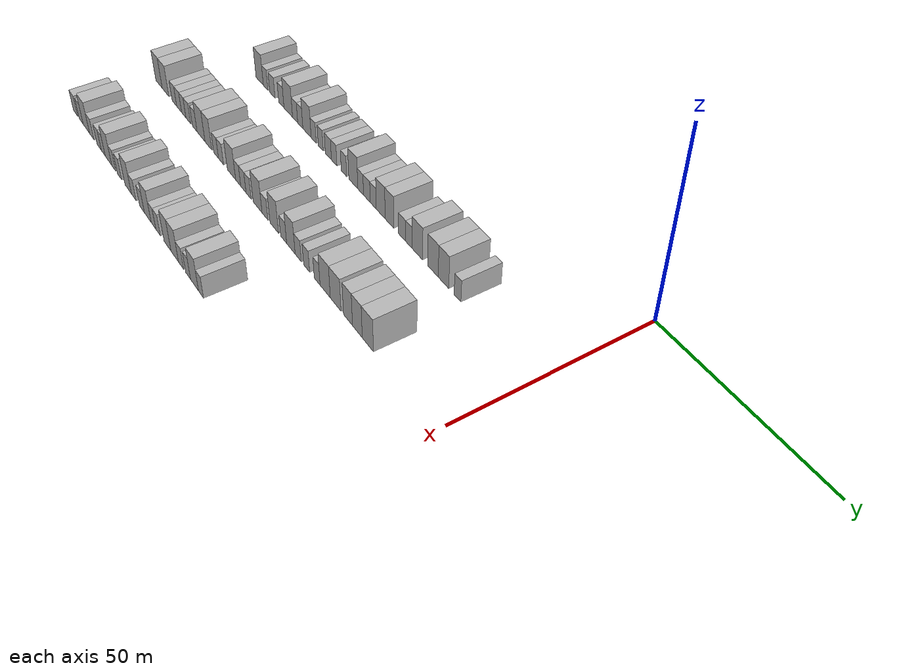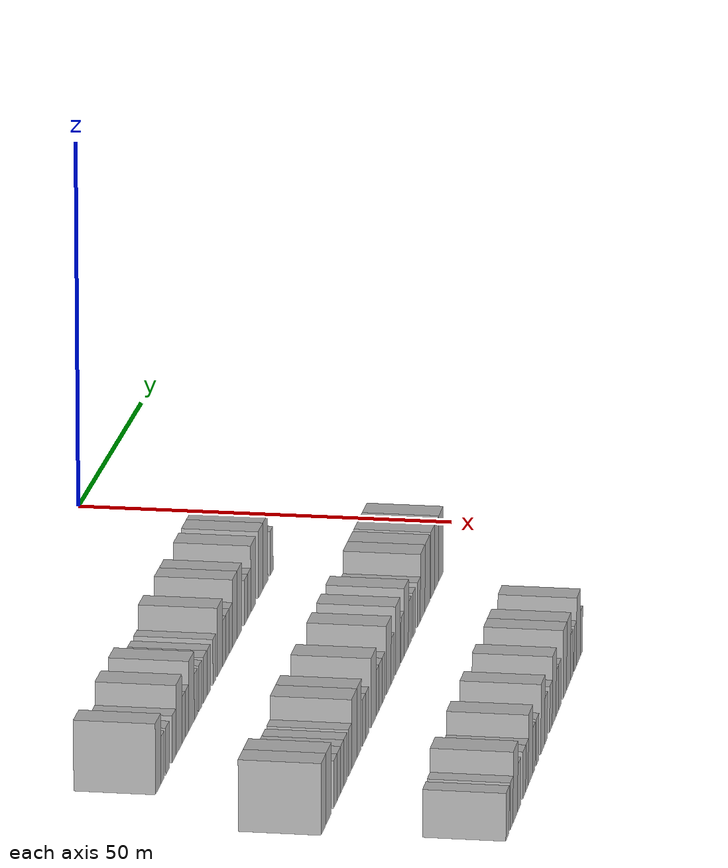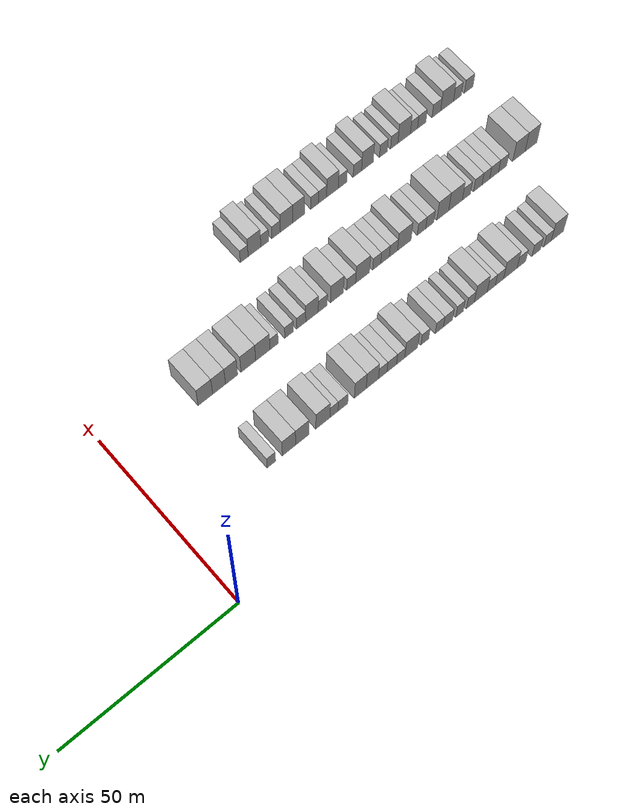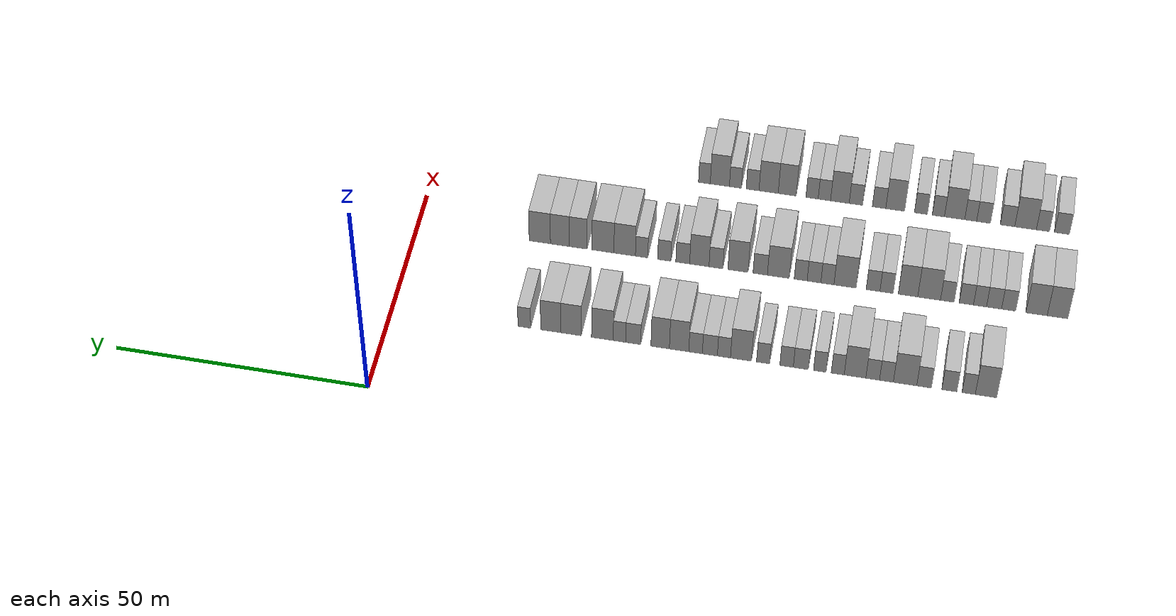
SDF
<sdf version="1.6">
 <world name="default">
  <model name="building_65">
   <static>1</static>
   <pose>25.0000 -115.8968 0 0.000000 0.000000 0.000000</pose>
   <link name="link">
    <pose>0 0 4.50 0 0 0</pose>
    <collision name="collision"><geometry><box><size>10.0000 4.0615 9.0000</size></box></geometry></collision>
    <visual name="visual">
     <cast_shadows>0</cast_shadows>
     <geometry><box><size>10.0000 4.0615 9.0000</size></box></geometry>
     <material>
      <script>
       <uri>model://HANNAS_wall/materials/scripts</uri>
       <uri>model://HANNAS_wall/materials/textures</uri>
       <name>vrc/HANNAS_wall</name>
      </script>
     </material>
    </visual>
   </link>
  </model>
  <model name="building_66">
   <static>1</static>
   <pose>25.0000 -112.6174 0 0.000000 0.000000 0.000000</pose>
   <link name="link">
    <pose>0 0 3.00 0 0 0</pose>
    <collision name="collision"><geometry><box><size>10.0000 2.4972 6.0000</size></box></geometry></collision>
    <visual name="visual">
     <cast_shadows>0</cast_shadows>
     <geometry><box><size>10.0000 2.4972 6.0000</size></box></geometry>
     <material>
      <script>
       <uri>model://HANNAS_wall/materials/scripts</uri>
       <uri>model://HANNAS_wall/materials/textures</uri>
       <name>vrc/HANNAS_wall</name>
      </script>
     </material>
    </visual>
   </link>
  </model>
  <model name="building_67">
   <static>1</static>
   <pose>25.0000 -108.9361 0 0.000000 0.000000 0.000000</pose>
   <link name="link">
    <pose>0 0 3.00 0 0 0</pose>
    <collision name="collision"><geometry><box><size>10.0000 2.8655 6.0000</size></box></geometry></collision>
    <visual name="visual">
     <cast_shadows>0</cast_shadows>
     <geometry><box><size>10.0000 2.8655 6.0000</size></box></geometry>
     <material>
      <script>
       <uri>model://HANNAS_wall/materials/scripts</uri>
       <uri>model://HANNAS_wall/materials/textures</uri>
       <name>vrc/HANNAS_wall</name>
      </script>
     </material>
    </visual>
   </link>
  </model>
  <model name="building_68">
   <static>1</static>
   <pose>25.0000 -104.1059 0 0.000000 0.000000 0.000000</pose>
   <link name="link">
    <pose>0 0 3.00 0 0 0</pose>
    <collision name="collision"><geometry><box><size>10.0000 2.7950 6.0000</size></box></geometry></collision>
    <visual name="visual">
     <cast_shadows>0</cast_shadows>
     <geometry><box><size>10.0000 2.7950 6.0000</size></box></geometry>
     <material>
      <script>
       <uri>model://HANNAS_wall/materials/scripts</uri>
       <uri>model://HANNAS_wall/materials/textures</uri>
       <name>vrc/HANNAS_wall</name>
      </script>
     </material>
    </visual>
   </link>
  </model>
  <model name="building_69">
   <static>1</static>
   <pose>25.0000 -100.4717 0 0.000000 0.000000 0.000000</pose>
   <link name="link">
    <pose>0 0 4.50 0 0 0</pose>
    <collision name="collision"><geometry><box><size>10.0000 4.4734 9.0000</size></box></geometry></collision>
    <visual name="visual">
     <cast_shadows>0</cast_shadows>
     <geometry><box><size>10.0000 4.4734 9.0000</size></box></geometry>
     <material>
      <script>
       <uri>model://HANNAS_wall/materials/scripts</uri>
       <uri>model://HANNAS_wall/materials/textures</uri>
       <name>vrc/HANNAS_wall</name>
      </script>
     </material>
    </visual>
   </link>
  </model>
  <model name="building_70">
   <static>1</static>
   <pose>25.0000 -96.9081 0 0.000000 0.000000 0.000000</pose>
   <link name="link">
    <pose>0 0 3.00 0 0 0</pose>
    <collision name="collision"><geometry><box><size>10.0000 2.6538 6.0000</size></box></geometry></collision>
    <visual name="visual">
     <cast_shadows>0</cast_shadows>
     <geometry><box><size>10.0000 2.6538 6.0000</size></box></geometry>
     <material>
      <script>
       <uri>model://HANNAS_wall/materials/scripts</uri>
       <uri>model://HANNAS_wall/materials/textures</uri>
       <name>vrc/HANNAS_wall</name>
      </script>
     </material>
    </visual>
   </link>
  </model>
  <model name="building_71">
   <static>1</static>
   <pose>25.0000 -94.2689 0 0.000000 0.000000 0.000000</pose>
   <link name="link">
    <pose>0 0 3.00 0 0 0</pose>
    <collision name="collision"><geometry><box><size>10.0000 2.6245 6.0000</size></box></geometry></collision>
    <visual name="visual">
     <cast_shadows>0</cast_shadows>
     <geometry><box><size>10.0000 2.6245 6.0000</size></box></geometry>
     <material>
      <script>
       <uri>model://HANNAS_wall/materials/scripts</uri>
       <uri>model://HANNAS_wall/materials/textures</uri>
       <name>vrc/HANNAS_wall</name>
      </script>
     </material>
    </visual>
   </link>
  </model>
  <model name="building_72">
   <static>1</static>
   <pose>25.0000 -90.8781 0 0.000000 0.000000 0.000000</pose>
   <link name="link">
    <pose>0 0 4.50 0 0 0</pose>
    <collision name="collision"><geometry><box><size>10.0000 4.1571 9.0000</size></box></geometry></collision>
    <visual name="visual">
     <cast_shadows>0</cast_shadows>
     <geometry><box><size>10.0000 4.1571 9.0000</size></box></geometry>
     <material>
      <script>
       <uri>model://HANNAS_wall/materials/scripts</uri>
       <uri>model://HANNAS_wall/materials/textures</uri>
       <name>vrc/HANNAS_wall</name>
      </script>
     </material>
    </visual>
   </link>
  </model>
  <model name="building_73">
   <static>1</static>
   <pose>25.0000 -87.5514 0 0.000000 0.000000 0.000000</pose>
   <link name="link">
    <pose>0 0 3.00 0 0 0</pose>
    <collision name="collision"><geometry><box><size>10.0000 2.4963 6.0000</size></box></geometry></collision>
    <visual name="visual">
     <cast_shadows>0</cast_shadows>
     <geometry><box><size>10.0000 2.4963 6.0000</size></box></geometry>
     <material>
      <script>
       <uri>model://HANNAS_wall/materials/scripts</uri>
       <uri>model://HANNAS_wall/materials/textures</uri>
       <name>vrc/HANNAS_wall</name>
      </script>
     </material>
    </visual>
   </link>
  </model>
  <model name="building_74">
   <static>1</static>
   <pose>25.0000 -84.0930 0 0.000000 0.000000 0.000000</pose>
   <link name="link">
    <pose>0 0 3.00 0 0 0</pose>
    <collision name="collision"><geometry><box><size>10.0000 2.4206 6.0000</size></box></geometry></collision>
    <visual name="visual">
     <cast_shadows>0</cast_shadows>
     <geometry><box><size>10.0000 2.4206 6.0000</size></box></geometry>
     <material>
      <script>
       <uri>model://HANNAS_wall/materials/scripts</uri>
       <uri>model://HANNAS_wall/materials/textures</uri>
       <name>vrc/HANNAS_wall</name>
      </script>
     </material>
    </visual>
   </link>
  </model>
  <model name="building_75">
   <static>1</static>
   <pose>25.0000 -80.4297 0 0.000000 0.000000 0.000000</pose>
   <link name="link">
    <pose>0 0 3.00 0 0 0</pose>
    <collision name="collision"><geometry><box><size>10.0000 2.9061 6.0000</size></box></geometry></collision>
    <visual name="visual">
     <cast_shadows>0</cast_shadows>
     <geometry><box><size>10.0000 2.9061 6.0000</size></box></geometry>
     <material>
      <script>
       <uri>model://HANNAS_wall/materials/scripts</uri>
       <uri>model://HANNAS_wall/materials/textures</uri>
       <name>vrc/HANNAS_wall</name>
      </script>
     </material>
    </visual>
   </link>
  </model>
  <model name="building_76">
   <static>1</static>
   <pose>25.0000 -77.6740 0 0.000000 0.000000 0.000000</pose>
   <link name="link">
    <pose>0 0 3.00 0 0 0</pose>
    <collision name="collision"><geometry><box><size>10.0000 2.6052 6.0000</size></box></geometry></collision>
    <visual name="visual">
     <cast_shadows>0</cast_shadows>
     <geometry><box><size>10.0000 2.6052 6.0000</size></box></geometry>
     <material>
      <script>
       <uri>model://HANNAS_wall/materials/scripts</uri>
       <uri>model://HANNAS_wall/materials/textures</uri>
       <name>vrc/HANNAS_wall</name>
      </script>
     </material>
    </visual>
   </link>
  </model>
  <model name="building_77">
   <static>1</static>
   <pose>25.0000 -73.1092 0 0.000000 0.000000 0.000000</pose>
   <link name="link">
    <pose>0 0 3.00 0 0 0</pose>
    <collision name="collision"><geometry><box><size>10.0000 2.5244 6.0000</size></box></geometry></collision>
    <visual name="visual">
     <cast_shadows>0</cast_shadows>
     <geometry><box><size>10.0000 2.5244 6.0000</size></box></geometry>
     <material>
      <script>
       <uri>model://HANNAS_wall/materials/scripts</uri>
       <uri>model://HANNAS_wall/materials/textures</uri>
       <name>vrc/HANNAS_wall</name>
      </script>
     </material>
    </visual>
   </link>
  </model>
  <model name="building_78">
   <static>1</static>
   <pose>25.0000 -68.8132 0 0.000000 0.000000 0.000000</pose>
   <link name="link">
    <pose>0 0 4.50 0 0 0</pose>
    <collision name="collision"><geometry><box><size>10.0000 4.0676 9.0000</size></box></geometry></collision>
    <visual name="visual">
     <cast_shadows>0</cast_shadows>
     <geometry><box><size>10.0000 4.0676 9.0000</size></box></geometry>
     <material>
      <script>
       <uri>model://HANNAS_wall/materials/scripts</uri>
       <uri>model://HANNAS_wall/materials/textures</uri>
       <name>vrc/HANNAS_wall</name>
      </script>
     </material>
    </visual>
   </link>
  </model>
  <model name="building_79">
   <static>1</static>
   <pose>25.0000 -65.5069 0 0.000000 0.000000 0.000000</pose>
   <link name="link">
    <pose>0 0 3.00 0 0 0</pose>
    <collision name="collision"><geometry><box><size>10.0000 2.5451 6.0000</size></box></geometry></collision>
    <visual name="visual">
     <cast_shadows>0</cast_shadows>
     <geometry><box><size>10.0000 2.5451 6.0000</size></box></geometry>
     <material>
      <script>
       <uri>model://HANNAS_wall/materials/scripts</uri>
       <uri>model://HANNAS_wall/materials/textures</uri>
       <name>vrc/HANNAS_wall</name>
      </script>
     </material>
    </visual>
   </link>
  </model>
  <model name="building_80">
   <static>1</static>
   <pose>25.0000 -62.7649 0 0.000000 0.000000 0.000000</pose>
   <link name="link">
    <pose>0 0 3.00 0 0 0</pose>
    <collision name="collision"><geometry><box><size>10.0000 2.9388 6.0000</size></box></geometry></collision>
    <visual name="visual">
     <cast_shadows>0</cast_shadows>
     <geometry><box><size>10.0000 2.9388 6.0000</size></box></geometry>
     <material>
      <script>
       <uri>model://HANNAS_wall/materials/scripts</uri>
       <uri>model://HANNAS_wall/materials/textures</uri>
       <name>vrc/HANNAS_wall</name>
      </script>
     </material>
    </visual>
   </link>
  </model>
  <model name="building_81">
   <static>1</static>
   <pose>25.0000 -59.9707 0 0.000000 0.000000 0.000000</pose>
   <link name="link">
    <pose>0 0 3.00 0 0 0</pose>
    <collision name="collision"><geometry><box><size>10.0000 2.6497 6.0000</size></box></geometry></collision>
    <visual name="visual">
     <cast_shadows>0</cast_shadows>
     <geometry><box><size>10.0000 2.6497 6.0000</size></box></geometry>
     <material>
      <script>
       <uri>model://HANNAS_wall/materials/scripts</uri>
       <uri>model://HANNAS_wall/materials/textures</uri>
       <name>vrc/HANNAS_wall</name>
      </script>
     </material>
    </visual>
   </link>
  </model>
  <model name="building_82">
   <static>1</static>
   <pose>25.0000 -56.7510 0 0.000000 0.000000 0.000000</pose>
   <link name="link">
    <pose>0 0 4.50 0 0 0</pose>
    <collision name="collision"><geometry><box><size>10.0000 3.7896 9.0000</size></box></geometry></collision>
    <visual name="visual">
     <cast_shadows>0</cast_shadows>
     <geometry><box><size>10.0000 3.7896 9.0000</size></box></geometry>
     <material>
      <script>
       <uri>model://HANNAS_wall/materials/scripts</uri>
       <uri>model://HANNAS_wall/materials/textures</uri>
       <name>vrc/HANNAS_wall</name>
      </script>
     </material>
    </visual>
   </link>
  </model>
  <model name="building_83">
   <static>1</static>
   <pose>25.0000 -53.0483 0 0.000000 0.000000 0.000000</pose>
   <link name="link">
    <pose>0 0 4.50 0 0 0</pose>
    <collision name="collision"><geometry><box><size>10.0000 3.6158 9.0000</size></box></geometry></collision>
    <visual name="visual">
     <cast_shadows>0</cast_shadows>
     <geometry><box><size>10.0000 3.6158 9.0000</size></box></geometry>
     <material>
      <script>
       <uri>model://HANNAS_wall/materials/scripts</uri>
       <uri>model://HANNAS_wall/materials/textures</uri>
       <name>vrc/HANNAS_wall</name>
      </script>
     </material>
    </visual>
   </link>
  </model>
  <model name="building_84">
   <static>1</static>
   <pose>25.0000 -47.7635 0 0.000000 0.000000 0.000000</pose>
   <link name="link">
    <pose>0 0 3.00 0 0 0</pose>
    <collision name="collision"><geometry><box><size>10.0000 2.9539 6.0000</size></box></geometry></collision>
    <visual name="visual">
     <cast_shadows>0</cast_shadows>
     <geometry><box><size>10.0000 2.9539 6.0000</size></box></geometry>
     <material>
      <script>
       <uri>model://HANNAS_wall/materials/scripts</uri>
       <uri>model://HANNAS_wall/materials/textures</uri>
       <name>vrc/HANNAS_wall</name>
      </script>
     </material>
    </visual>
   </link>
  </model>
  <model name="building_85">
   <static>1</static>
   <pose>25.0000 -45.0613 0 0.000000 0.000000 0.000000</pose>
   <link name="link">
    <pose>0 0 3.00 0 0 0</pose>
    <collision name="collision"><geometry><box><size>10.0000 2.4507 6.0000</size></box></geometry></collision>
    <visual name="visual">
     <cast_shadows>0</cast_shadows>
     <geometry><box><size>10.0000 2.4507 6.0000</size></box></geometry>
     <material>
      <script>
       <uri>model://HANNAS_wall/materials/scripts</uri>
       <uri>model://HANNAS_wall/materials/textures</uri>
       <name>vrc/HANNAS_wall</name>
      </script>
     </material>
    </visual>
   </link>
  </model>
  <model name="building_86">
   <static>1</static>
   <pose>25.0000 -41.6921 0 0.000000 0.000000 0.000000</pose>
   <link name="link">
    <pose>0 0 4.50 0 0 0</pose>
    <collision name="collision"><geometry><box><size>10.0000 4.2877 9.0000</size></box></geometry></collision>
    <visual name="visual">
     <cast_shadows>0</cast_shadows>
     <geometry><box><size>10.0000 4.2877 9.0000</size></box></geometry>
     <material>
      <script>
       <uri>model://HANNAS_wall/materials/scripts</uri>
       <uri>model://HANNAS_wall/materials/textures</uri>
       <name>vrc/HANNAS_wall</name>
      </script>
     </material>
    </visual>
   </link>
  </model>
  <model name="building_87">
   <static>1</static>
   <pose>25.0000 -35.5112 0 0.000000 0.000000 0.000000</pose>
   <link name="link">
    <pose>0 0 4.50 0 0 0</pose>
    <collision name="collision"><geometry><box><size>10.0000 4.0740 9.0000</size></box></geometry></collision>
    <visual name="visual">
     <cast_shadows>0</cast_shadows>
     <geometry><box><size>10.0000 4.0740 9.0000</size></box></geometry>
     <material>
      <script>
       <uri>model://HANNAS_wall/materials/scripts</uri>
       <uri>model://HANNAS_wall/materials/textures</uri>
       <name>vrc/HANNAS_wall</name>
      </script>
     </material>
    </visual>
   </link>
  </model>
  <model name="building_88">
   <static>1</static>
   <pose>25.0000 -31.4903 0 0.000000 0.000000 0.000000</pose>
   <link name="link">
    <pose>0 0 4.50 0 0 0</pose>
    <collision name="collision"><geometry><box><size>10.0000 3.9677 9.0000</size></box></geometry></collision>
    <visual name="visual">
     <cast_shadows>0</cast_shadows>
     <geometry><box><size>10.0000 3.9677 9.0000</size></box></geometry>
     <material>
      <script>
       <uri>model://HANNAS_wall/materials/scripts</uri>
       <uri>model://HANNAS_wall/materials/textures</uri>
       <name>vrc/HANNAS_wall</name>
      </script>
     </material>
    </visual>
   </link>
  </model>
  <model name="building_89">
   <static>1</static>
   <pose>25.0000 -26.2488 0 0.000000 0.000000 0.000000</pose>
   <link name="link">
    <pose>0 0 3.00 0 0 0</pose>
    <collision name="collision"><geometry><box><size>10.0000 2.5153 6.0000</size></box></geometry></collision>
    <visual name="visual">
     <cast_shadows>0</cast_shadows>
     <geometry><box><size>10.0000 2.5153 6.0000</size></box></geometry>
     <material>
      <script>
       <uri>model://HANNAS_wall/materials/scripts</uri>
       <uri>model://HANNAS_wall/materials/textures</uri>
       <name>vrc/HANNAS_wall</name>
      </script>
     </material>
    </visual>
   </link>
  </model>
  <model name="building_251">
   <static>1</static>
   <pose>47.0000 -127.9967 0 0.000000 0.000000 0.000000</pose>
   <link name="link">
    <pose>0 0 4.50 0 0 0</pose>
    <collision name="collision"><geometry><box><size>10.0000 3.9940 9.0000</size></box></geometry></collision>
    <visual name="visual">
     <cast_shadows>0</cast_shadows>
     <geometry><box><size>10.0000 3.9940 9.0000</size></box></geometry>
     <material>
      <script>
       <uri>model://HANNAS_wall/materials/scripts</uri>
       <uri>model://HANNAS_wall/materials/textures</uri>
       <name>vrc/HANNAS_wall</name>
      </script>
     </material>
    </visual>
   </link>
  </model>
  <model name="building_252">
   <static>1</static>
   <pose>47.0000 -123.9243 0 0.000000 0.000000 0.000000</pose>
   <link name="link">
    <pose>0 0 4.50 0 0 0</pose>
    <collision name="collision"><geometry><box><size>10.0000 4.1507 9.0000</size></box></geometry></collision>
    <visual name="visual">
     <cast_shadows>0</cast_shadows>
     <geometry><box><size>10.0000 4.1507 9.0000</size></box></geometry>
     <material>
      <script>
       <uri>model://HANNAS_wall/materials/scripts</uri>
       <uri>model://HANNAS_wall/materials/textures</uri>
       <name>vrc/HANNAS_wall</name>
      </script>
     </material>
    </visual>
   </link>
  </model>
  <model name="building_253">
   <static>1</static>
   <pose>47.0000 -118.4727 0 0.000000 0.000000 0.000000</pose>
   <link name="link">
    <pose>0 0 3.00 0 0 0</pose>
    <collision name="collision"><geometry><box><size>10.0000 2.7526 6.0000</size></box></geometry></collision>
    <visual name="visual">
     <cast_shadows>0</cast_shadows>
     <geometry><box><size>10.0000 2.7526 6.0000</size></box></geometry>
     <material>
      <script>
       <uri>model://HANNAS_wall/materials/scripts</uri>
       <uri>model://HANNAS_wall/materials/textures</uri>
       <name>vrc/HANNAS_wall</name>
      </script>
     </material>
    </visual>
   </link>
  </model>
  <model name="building_254">
   <static>1</static>
   <pose>47.0000 -115.6264 0 0.000000 0.000000 0.000000</pose>
   <link name="link">
    <pose>0 0 3.00 0 0 0</pose>
    <collision name="collision"><geometry><box><size>10.0000 2.9399 6.0000</size></box></geometry></collision>
    <visual name="visual">
     <cast_shadows>0</cast_shadows>
     <geometry><box><size>10.0000 2.9399 6.0000</size></box></geometry>
     <material>
      <script>
       <uri>model://HANNAS_wall/materials/scripts</uri>
       <uri>model://HANNAS_wall/materials/textures</uri>
       <name>vrc/HANNAS_wall</name>
      </script>
     </material>
    </visual>
   </link>
  </model>
  <model name="building_255">
   <static>1</static>
   <pose>47.0000 -112.8820 0 0.000000 0.000000 0.000000</pose>
   <link name="link">
    <pose>0 0 3.00 0 0 0</pose>
    <collision name="collision"><geometry><box><size>10.0000 2.5488 6.0000</size></box></geometry></collision>
    <visual name="visual">
     <cast_shadows>0</cast_shadows>
     <geometry><box><size>10.0000 2.5488 6.0000</size></box></geometry>
     <material>
      <script>
       <uri>model://HANNAS_wall/materials/scripts</uri>
       <uri>model://HANNAS_wall/materials/textures</uri>
       <name>vrc/HANNAS_wall</name>
      </script>
     </material>
    </visual>
   </link>
  </model>
  <model name="building_256">
   <static>1</static>
   <pose>47.0000 -110.2112 0 0.000000 0.000000 0.000000</pose>
   <link name="link">
    <pose>0 0 3.00 0 0 0</pose>
    <collision name="collision"><geometry><box><size>10.0000 2.7929 6.0000</size></box></geometry></collision>
    <visual name="visual">
     <cast_shadows>0</cast_shadows>
     <geometry><box><size>10.0000 2.7929 6.0000</size></box></geometry>
     <material>
      <script>
       <uri>model://HANNAS_wall/materials/scripts</uri>
       <uri>model://HANNAS_wall/materials/textures</uri>
       <name>vrc/HANNAS_wall</name>
      </script>
     </material>
    </visual>
   </link>
  </model>
  <model name="building_257">
   <static>1</static>
   <pose>47.0000 -106.4787 0 0.000000 0.000000 0.000000</pose>
   <link name="link">
    <pose>0 0 3.00 0 0 0</pose>
    <collision name="collision"><geometry><box><size>10.0000 2.6722 6.0000</size></box></geometry></collision>
    <visual name="visual">
     <cast_shadows>0</cast_shadows>
     <geometry><box><size>10.0000 2.6722 6.0000</size></box></geometry>
     <material>
      <script>
       <uri>model://HANNAS_wall/materials/scripts</uri>
       <uri>model://HANNAS_wall/materials/textures</uri>
       <name>vrc/HANNAS_wall</name>
      </script>
     </material>
    </visual>
   </link>
  </model>
  <model name="building_258">
   <static>1</static>
   <pose>47.0000 -102.9023 0 0.000000 0.000000 0.000000</pose>
   <link name="link">
    <pose>0 0 4.50 0 0 0</pose>
    <collision name="collision"><geometry><box><size>10.0000 4.4806 9.0000</size></box></geometry></collision>
    <visual name="visual">
     <cast_shadows>0</cast_shadows>
     <geometry><box><size>10.0000 4.4806 9.0000</size></box></geometry>
     <material>
      <script>
       <uri>model://HANNAS_wall/materials/scripts</uri>
       <uri>model://HANNAS_wall/materials/textures</uri>
       <name>vrc/HANNAS_wall</name>
      </script>
     </material>
    </visual>
   </link>
  </model>
  <model name="building_259">
   <static>1</static>
   <pose>47.0000 -98.7463 0 0.000000 0.000000 0.000000</pose>
   <link name="link">
    <pose>0 0 4.50 0 0 0</pose>
    <collision name="collision"><geometry><box><size>10.0000 3.8314 9.0000</size></box></geometry></collision>
    <visual name="visual">
     <cast_shadows>0</cast_shadows>
     <geometry><box><size>10.0000 3.8314 9.0000</size></box></geometry>
     <material>
      <script>
       <uri>model://HANNAS_wall/materials/scripts</uri>
       <uri>model://HANNAS_wall/materials/textures</uri>
       <name>vrc/HANNAS_wall</name>
      </script>
     </material>
    </visual>
   </link>
  </model>
  <model name="building_260">
   <static>1</static>
   <pose>47.0000 -94.5215 0 0.000000 0.000000 0.000000</pose>
   <link name="link">
    <pose>0 0 3.00 0 0 0</pose>
    <collision name="collision"><geometry><box><size>10.0000 2.6181 6.0000</size></box></geometry></collision>
    <visual name="visual">
     <cast_shadows>0</cast_shadows>
     <geometry><box><size>10.0000 2.6181 6.0000</size></box></geometry>
     <material>
      <script>
       <uri>model://HANNAS_wall/materials/scripts</uri>
       <uri>model://HANNAS_wall/materials/textures</uri>
       <name>vrc/HANNAS_wall</name>
      </script>
     </material>
    </visual>
   </link>
  </model>
  <model name="building_261">
   <static>1</static>
   <pose>47.0000 -91.8496 0 0.000000 0.000000 0.000000</pose>
   <link name="link">
    <pose>0 0 3.00 0 0 0</pose>
    <collision name="collision"><geometry><box><size>10.0000 2.7258 6.0000</size></box></geometry></collision>
    <visual name="visual">
     <cast_shadows>0</cast_shadows>
     <geometry><box><size>10.0000 2.7258 6.0000</size></box></geometry>
     <material>
      <script>
       <uri>model://HANNAS_wall/materials/scripts</uri>
       <uri>model://HANNAS_wall/materials/textures</uri>
       <name>vrc/HANNAS_wall</name>
      </script>
     </material>
    </visual>
   </link>
  </model>
  <model name="building_262">
   <static>1</static>
   <pose>47.0000 -86.2962 0 0.000000 0.000000 0.000000</pose>
   <link name="link">
    <pose>0 0 4.50 0 0 0</pose>
    <collision name="collision"><geometry><box><size>10.0000 4.3809 9.0000</size></box></geometry></collision>
    <visual name="visual">
     <cast_shadows>0</cast_shadows>
     <geometry><box><size>10.0000 4.3809 9.0000</size></box></geometry>
     <material>
      <script>
       <uri>model://HANNAS_wall/materials/scripts</uri>
       <uri>model://HANNAS_wall/materials/textures</uri>
       <name>vrc/HANNAS_wall</name>
      </script>
     </material>
    </visual>
   </link>
  </model>
  <model name="building_263">
   <static>1</static>
   <pose>47.0000 -82.8058 0 0.000000 0.000000 0.000000</pose>
   <link name="link">
    <pose>0 0 3.00 0 0 0</pose>
    <collision name="collision"><geometry><box><size>10.0000 2.5998 6.0000</size></box></geometry></collision>
    <visual name="visual">
     <cast_shadows>0</cast_shadows>
     <geometry><box><size>10.0000 2.5998 6.0000</size></box></geometry>
     <material>
      <script>
       <uri>model://HANNAS_wall/materials/scripts</uri>
       <uri>model://HANNAS_wall/materials/textures</uri>
       <name>vrc/HANNAS_wall</name>
      </script>
     </material>
    </visual>
   </link>
  </model>
  <model name="building_264">
   <static>1</static>
   <pose>47.0000 -80.1376 0 0.000000 0.000000 0.000000</pose>
   <link name="link">
    <pose>0 0 3.00 0 0 0</pose>
    <collision name="collision"><geometry><box><size>10.0000 2.7367 6.0000</size></box></geometry></collision>
    <visual name="visual">
     <cast_shadows>0</cast_shadows>
     <geometry><box><size>10.0000 2.7367 6.0000</size></box></geometry>
     <material>
      <script>
       <uri>model://HANNAS_wall/materials/scripts</uri>
       <uri>model://HANNAS_wall/materials/textures</uri>
       <name>vrc/HANNAS_wall</name>
      </script>
     </material>
    </visual>
   </link>
  </model>
  <model name="building_265">
   <static>1</static>
   <pose>47.0000 -77.4832 0 0.000000 0.000000 0.000000</pose>
   <link name="link">
    <pose>0 0 3.00 0 0 0</pose>
    <collision name="collision"><geometry><box><size>10.0000 2.5722 6.0000</size></box></geometry></collision>
    <visual name="visual">
     <cast_shadows>0</cast_shadows>
     <geometry><box><size>10.0000 2.5722 6.0000</size></box></geometry>
     <material>
      <script>
       <uri>model://HANNAS_wall/materials/scripts</uri>
       <uri>model://HANNAS_wall/materials/textures</uri>
       <name>vrc/HANNAS_wall</name>
      </script>
     </material>
    </visual>
   </link>
  </model>
  <model name="building_266">
   <static>1</static>
   <pose>47.0000 -73.0202 0 0.000000 0.000000 0.000000</pose>
   <link name="link">
    <pose>0 0 4.50 0 0 0</pose>
    <collision name="collision"><geometry><box><size>10.0000 4.3539 9.0000</size></box></geometry></collision>
    <visual name="visual">
     <cast_shadows>0</cast_shadows>
     <geometry><box><size>10.0000 4.3539 9.0000</size></box></geometry>
     <material>
      <script>
       <uri>model://HANNAS_wall/materials/scripts</uri>
       <uri>model://HANNAS_wall/materials/textures</uri>
       <name>vrc/HANNAS_wall</name>
      </script>
     </material>
    </visual>
   </link>
  </model>
  <model name="building_267">
   <static>1</static>
   <pose>47.0000 -69.4088 0 0.000000 0.000000 0.000000</pose>
   <link name="link">
    <pose>0 0 3.00 0 0 0</pose>
    <collision name="collision"><geometry><box><size>10.0000 2.8688 6.0000</size></box></geometry></collision>
    <visual name="visual">
     <cast_shadows>0</cast_shadows>
     <geometry><box><size>10.0000 2.8688 6.0000</size></box></geometry>
     <material>
      <script>
       <uri>model://HANNAS_wall/materials/scripts</uri>
       <uri>model://HANNAS_wall/materials/textures</uri>
       <name>vrc/HANNAS_wall</name>
      </script>
     </material>
    </visual>
   </link>
  </model>
  <model name="building_268">
   <static>1</static>
   <pose>47.0000 -64.9549 0 0.000000 0.000000 0.000000</pose>
   <link name="link">
    <pose>0 0 4.50 0 0 0</pose>
    <collision name="collision"><geometry><box><size>10.0000 4.0392 9.0000</size></box></geometry></collision>
    <visual name="visual">
     <cast_shadows>0</cast_shadows>
     <geometry><box><size>10.0000 4.0392 9.0000</size></box></geometry>
     <material>
      <script>
       <uri>model://HANNAS_wall/materials/scripts</uri>
       <uri>model://HANNAS_wall/materials/textures</uri>
       <name>vrc/HANNAS_wall</name>
      </script>
     </material>
    </visual>
   </link>
  </model>
  <model name="building_269">
   <static>1</static>
   <pose>47.0000 -60.5419 0 0.000000 0.000000 0.000000</pose>
   <link name="link">
    <pose>0 0 3.00 0 0 0</pose>
    <collision name="collision"><geometry><box><size>10.0000 2.7868 6.0000</size></box></geometry></collision>
    <visual name="visual">
     <cast_shadows>0</cast_shadows>
     <geometry><box><size>10.0000 2.7868 6.0000</size></box></geometry>
     <material>
      <script>
       <uri>model://HANNAS_wall/materials/scripts</uri>
       <uri>model://HANNAS_wall/materials/textures</uri>
       <name>vrc/HANNAS_wall</name>
      </script>
     </material>
    </visual>
   </link>
  </model>
  <model name="building_270">
   <static>1</static>
   <pose>47.0000 -57.2020 0 0.000000 0.000000 0.000000</pose>
   <link name="link">
    <pose>0 0 4.50 0 0 0</pose>
    <collision name="collision"><geometry><box><size>10.0000 3.8930 9.0000</size></box></geometry></collision>
    <visual name="visual">
     <cast_shadows>0</cast_shadows>
     <geometry><box><size>10.0000 3.8930 9.0000</size></box></geometry>
     <material>
      <script>
       <uri>model://HANNAS_wall/materials/scripts</uri>
       <uri>model://HANNAS_wall/materials/textures</uri>
       <name>vrc/HANNAS_wall</name>
      </script>
     </material>
    </visual>
   </link>
  </model>
  <model name="building_271">
   <static>1</static>
   <pose>47.0000 -53.8644 0 0.000000 0.000000 0.000000</pose>
   <link name="link">
    <pose>0 0 3.00 0 0 0</pose>
    <collision name="collision"><geometry><box><size>10.0000 2.7821 6.0000</size></box></geometry></collision>
    <visual name="visual">
     <cast_shadows>0</cast_shadows>
     <geometry><box><size>10.0000 2.7821 6.0000</size></box></geometry>
     <material>
      <script>
       <uri>model://HANNAS_wall/materials/scripts</uri>
       <uri>model://HANNAS_wall/materials/textures</uri>
       <name>vrc/HANNAS_wall</name>
      </script>
     </material>
    </visual>
   </link>
  </model>
  <model name="building_272">
   <static>1</static>
   <pose>47.0000 -50.1445 0 0.000000 0.000000 0.000000</pose>
   <link name="link">
    <pose>0 0 3.00 0 0 0</pose>
    <collision name="collision"><geometry><box><size>10.0000 2.6576 6.0000</size></box></geometry></collision>
    <visual name="visual">
     <cast_shadows>0</cast_shadows>
     <geometry><box><size>10.0000 2.6576 6.0000</size></box></geometry>
     <material>
      <script>
       <uri>model://HANNAS_wall/materials/scripts</uri>
       <uri>model://HANNAS_wall/materials/textures</uri>
       <name>vrc/HANNAS_wall</name>
      </script>
     </material>
    </visual>
   </link>
  </model>
  <model name="building_273">
   <static>1</static>
   <pose>47.0000 -45.5627 0 0.000000 0.000000 0.000000</pose>
   <link name="link">
    <pose>0 0 3.00 0 0 0</pose>
    <collision name="collision"><geometry><box><size>10.0000 2.5060 6.0000</size></box></geometry></collision>
    <visual name="visual">
     <cast_shadows>0</cast_shadows>
     <geometry><box><size>10.0000 2.5060 6.0000</size></box></geometry>
     <material>
      <script>
       <uri>model://HANNAS_wall/materials/scripts</uri>
       <uri>model://HANNAS_wall/materials/textures</uri>
       <name>vrc/HANNAS_wall</name>
      </script>
     </material>
    </visual>
   </link>
  </model>
  <model name="building_274">
   <static>1</static>
   <pose>47.0000 -42.1342 0 0.000000 0.000000 0.000000</pose>
   <link name="link">
    <pose>0 0 4.50 0 0 0</pose>
    <collision name="collision"><geometry><box><size>10.0000 4.3511 9.0000</size></box></geometry></collision>
    <visual name="visual">
     <cast_shadows>0</cast_shadows>
     <geometry><box><size>10.0000 4.3511 9.0000</size></box></geometry>
     <material>
      <script>
       <uri>model://HANNAS_wall/materials/scripts</uri>
       <uri>model://HANNAS_wall/materials/textures</uri>
       <name>vrc/HANNAS_wall</name>
      </script>
     </material>
    </visual>
   </link>
  </model>
  <model name="building_275">
   <static>1</static>
   <pose>47.0000 -37.7378 0 0.000000 0.000000 0.000000</pose>
   <link name="link">
    <pose>0 0 4.50 0 0 0</pose>
    <collision name="collision"><geometry><box><size>10.0000 4.4418 9.0000</size></box></geometry></collision>
    <visual name="visual">
     <cast_shadows>0</cast_shadows>
     <geometry><box><size>10.0000 4.4418 9.0000</size></box></geometry>
     <material>
      <script>
       <uri>model://HANNAS_wall/materials/scripts</uri>
       <uri>model://HANNAS_wall/materials/textures</uri>
       <name>vrc/HANNAS_wall</name>
      </script>
     </material>
    </visual>
   </link>
  </model>
  <model name="building_276">
   <static>1</static>
   <pose>47.0000 -32.6978 0 0.000000 0.000000 0.000000</pose>
   <link name="link">
    <pose>0 0 4.50 0 0 0</pose>
    <collision name="collision"><geometry><box><size>10.0000 3.6381 9.0000</size></box></geometry></collision>
    <visual name="visual">
     <cast_shadows>0</cast_shadows>
     <geometry><box><size>10.0000 3.6381 9.0000</size></box></geometry>
     <material>
      <script>
       <uri>model://HANNAS_wall/materials/scripts</uri>
       <uri>model://HANNAS_wall/materials/textures</uri>
       <name>vrc/HANNAS_wall</name>
      </script>
     </material>
    </visual>
   </link>
  </model>
  <model name="building_277">
   <static>1</static>
   <pose>47.0000 -28.9551 0 0.000000 0.000000 0.000000</pose>
   <link name="link">
    <pose>0 0 4.50 0 0 0</pose>
    <collision name="collision"><geometry><box><size>10.0000 3.8474 9.0000</size></box></geometry></collision>
    <visual name="visual">
     <cast_shadows>0</cast_shadows>
     <geometry><box><size>10.0000 3.8474 9.0000</size></box></geometry>
     <material>
      <script>
       <uri>model://HANNAS_wall/materials/scripts</uri>
       <uri>model://HANNAS_wall/materials/textures</uri>
       <name>vrc/HANNAS_wall</name>
      </script>
     </material>
    </visual>
   </link>
  </model>
  <model name="building_278">
   <static>1</static>
   <pose>47.0000 -24.8660 0 0.000000 0.000000 0.000000</pose>
   <link name="link">
    <pose>0 0 4.50 0 0 0</pose>
    <collision name="collision"><geometry><box><size>10.0000 4.3308 9.0000</size></box></geometry></collision>
    <visual name="visual">
     <cast_shadows>0</cast_shadows>
     <geometry><box><size>10.0000 4.3308 9.0000</size></box></geometry>
     <material>
      <script>
       <uri>model://HANNAS_wall/materials/scripts</uri>
       <uri>model://HANNAS_wall/materials/textures</uri>
       <name>vrc/HANNAS_wall</name>
      </script>
     </material>
    </visual>
   </link>
  </model>
  <model name="building_432">
   <static>1</static>
   <pose>69.0000 -127.4433 0 0.000000 0.000000 0.000000</pose>
   <link name="link">
    <pose>0 0 3.00 0 0 0</pose>
    <collision name="collision"><geometry><box><size>10.0000 2.9683 6.0000</size></box></geometry></collision>
    <visual name="visual">
     <cast_shadows>0</cast_shadows>
     <geometry><box><size>10.0000 2.9683 6.0000</size></box></geometry>
     <material>
      <script>
       <uri>model://HANNAS_wall/materials/scripts</uri>
       <uri>model://HANNAS_wall/materials/textures</uri>
       <name>vrc/HANNAS_wall</name>
      </script>
     </material>
    </visual>
   </link>
  </model>
  <model name="building_433">
   <static>1</static>
   <pose>69.0000 -123.6446 0 0.000000 0.000000 0.000000</pose>
   <link name="link">
    <pose>0 0 3.00 0 0 0</pose>
    <collision name="collision"><geometry><box><size>10.0000 2.6292 6.0000</size></box></geometry></collision>
    <visual name="visual">
     <cast_shadows>0</cast_shadows>
     <geometry><box><size>10.0000 2.6292 6.0000</size></box></geometry>
     <material>
      <script>
       <uri>model://HANNAS_wall/materials/scripts</uri>
       <uri>model://HANNAS_wall/materials/textures</uri>
       <name>vrc/HANNAS_wall</name>
      </script>
     </material>
    </visual>
   </link>
  </model>
  <model name="building_434">
   <static>1</static>
   <pose>69.0000 -120.1632 0 0.000000 0.000000 0.000000</pose>
   <link name="link">
    <pose>0 0 4.50 0 0 0</pose>
    <collision name="collision"><geometry><box><size>10.0000 4.3335 9.0000</size></box></geometry></collision>
    <visual name="visual">
     <cast_shadows>0</cast_shadows>
     <geometry><box><size>10.0000 4.3335 9.0000</size></box></geometry>
     <material>
      <script>
       <uri>model://HANNAS_wall/materials/scripts</uri>
       <uri>model://HANNAS_wall/materials/textures</uri>
       <name>vrc/HANNAS_wall</name>
      </script>
     </material>
    </visual>
   </link>
  </model>
  <model name="building_435">
   <static>1</static>
   <pose>69.0000 -116.5506 0 0.000000 0.000000 0.000000</pose>
   <link name="link">
    <pose>0 0 3.00 0 0 0</pose>
    <collision name="collision"><geometry><box><size>10.0000 2.8917 6.0000</size></box></geometry></collision>
    <visual name="visual">
     <cast_shadows>0</cast_shadows>
     <geometry><box><size>10.0000 2.8917 6.0000</size></box></geometry>
     <material>
      <script>
       <uri>model://HANNAS_wall/materials/scripts</uri>
       <uri>model://HANNAS_wall/materials/textures</uri>
       <name>vrc/HANNAS_wall</name>
      </script>
     </material>
    </visual>
   </link>
  </model>
  <model name="building_436">
   <static>1</static>
   <pose>69.0000 -111.7140 0 0.000000 0.000000 0.000000</pose>
   <link name="link">
    <pose>0 0 3.00 0 0 0</pose>
    <collision name="collision"><geometry><box><size>10.0000 2.7816 6.0000</size></box></geometry></collision>
    <visual name="visual">
     <cast_shadows>0</cast_shadows>
     <geometry><box><size>10.0000 2.7816 6.0000</size></box></geometry>
     <material>
      <script>
       <uri>model://HANNAS_wall/materials/scripts</uri>
       <uri>model://HANNAS_wall/materials/textures</uri>
       <name>vrc/HANNAS_wall</name>
      </script>
     </material>
    </visual>
   </link>
  </model>
  <model name="building_437">
   <static>1</static>
   <pose>69.0000 -109.1223 0 0.000000 0.000000 0.000000</pose>
   <link name="link">
    <pose>0 0 3.00 0 0 0</pose>
    <collision name="collision"><geometry><box><size>10.0000 2.4018 6.0000</size></box></geometry></collision>
    <visual name="visual">
     <cast_shadows>0</cast_shadows>
     <geometry><box><size>10.0000 2.4018 6.0000</size></box></geometry>
     <material>
      <script>
       <uri>model://HANNAS_wall/materials/scripts</uri>
       <uri>model://HANNAS_wall/materials/textures</uri>
       <name>vrc/HANNAS_wall</name>
      </script>
     </material>
    </visual>
   </link>
  </model>
  <model name="building_438">
   <static>1</static>
   <pose>69.0000 -105.8702 0 0.000000 0.000000 0.000000</pose>
   <link name="link">
    <pose>0 0 4.50 0 0 0</pose>
    <collision name="collision"><geometry><box><size>10.0000 4.1023 9.0000</size></box></geometry></collision>
    <visual name="visual">
     <cast_shadows>0</cast_shadows>
     <geometry><box><size>10.0000 4.1023 9.0000</size></box></geometry>
     <material>
      <script>
       <uri>model://HANNAS_wall/materials/scripts</uri>
       <uri>model://HANNAS_wall/materials/textures</uri>
       <name>vrc/HANNAS_wall</name>
      </script>
     </material>
    </visual>
   </link>
  </model>
  <model name="building_439">
   <static>1</static>
   <pose>69.0000 -102.6000 0 0.000000 0.000000 0.000000</pose>
   <link name="link">
    <pose>0 0 3.00 0 0 0</pose>
    <collision name="collision"><geometry><box><size>10.0000 2.4380 6.0000</size></box></geometry></collision>
    <visual name="visual">
     <cast_shadows>0</cast_shadows>
     <geometry><box><size>10.0000 2.4380 6.0000</size></box></geometry>
     <material>
      <script>
       <uri>model://HANNAS_wall/materials/scripts</uri>
       <uri>model://HANNAS_wall/materials/textures</uri>
       <name>vrc/HANNAS_wall</name>
      </script>
     </material>
    </visual>
   </link>
  </model>
  <model name="building_440">
   <static>1</static>
   <pose>69.0000 -99.0752 0 0.000000 0.000000 0.000000</pose>
   <link name="link">
    <pose>0 0 3.00 0 0 0</pose>
    <collision name="collision"><geometry><box><size>10.0000 2.6118 6.0000</size></box></geometry></collision>
    <visual name="visual">
     <cast_shadows>0</cast_shadows>
     <geometry><box><size>10.0000 2.6118 6.0000</size></box></geometry>
     <material>
      <script>
       <uri>model://HANNAS_wall/materials/scripts</uri>
       <uri>model://HANNAS_wall/materials/textures</uri>
       <name>vrc/HANNAS_wall</name>
      </script>
     </material>
    </visual>
   </link>
  </model>
  <model name="building_441">
   <static>1</static>
   <pose>69.0000 -93.8600 0 0.000000 0.000000 0.000000</pose>
   <link name="link">
    <pose>0 0 4.50 0 0 0</pose>
    <collision name="collision"><geometry><box><size>10.0000 3.8186 9.0000</size></box></geometry></collision>
    <visual name="visual">
     <cast_shadows>0</cast_shadows>
     <geometry><box><size>10.0000 3.8186 9.0000</size></box></geometry>
     <material>
      <script>
       <uri>model://HANNAS_wall/materials/scripts</uri>
       <uri>model://HANNAS_wall/materials/textures</uri>
       <name>vrc/HANNAS_wall</name>
      </script>
     </material>
    </visual>
   </link>
  </model>
  <model name="building_442">
   <static>1</static>
   <pose>69.0000 -90.5819 0 0.000000 0.000000 0.000000</pose>
   <link name="link">
    <pose>0 0 3.00 0 0 0</pose>
    <collision name="collision"><geometry><box><size>10.0000 2.7377 6.0000</size></box></geometry></collision>
    <visual name="visual">
     <cast_shadows>0</cast_shadows>
     <geometry><box><size>10.0000 2.7377 6.0000</size></box></geometry>
     <material>
      <script>
       <uri>model://HANNAS_wall/materials/scripts</uri>
       <uri>model://HANNAS_wall/materials/textures</uri>
       <name>vrc/HANNAS_wall</name>
      </script>
     </material>
    </visual>
   </link>
  </model>
  <model name="building_443">
   <static>1</static>
   <pose>69.0000 -85.8519 0 0.000000 0.000000 0.000000</pose>
   <link name="link">
    <pose>0 0 3.00 0 0 0</pose>
    <collision name="collision"><geometry><box><size>10.0000 2.7222 6.0000</size></box></geometry></collision>
    <visual name="visual">
     <cast_shadows>0</cast_shadows>
     <geometry><box><size>10.0000 2.7222 6.0000</size></box></geometry>
     <material>
      <script>
       <uri>model://HANNAS_wall/materials/scripts</uri>
       <uri>model://HANNAS_wall/materials/textures</uri>
       <name>vrc/HANNAS_wall</name>
      </script>
     </material>
    </visual>
   </link>
  </model>
  <model name="building_444">
   <static>1</static>
   <pose>69.0000 -82.5892 0 0.000000 0.000000 0.000000</pose>
   <link name="link">
    <pose>0 0 4.50 0 0 0</pose>
    <collision name="collision"><geometry><box><size>10.0000 3.8033 9.0000</size></box></geometry></collision>
    <visual name="visual">
     <cast_shadows>0</cast_shadows>
     <geometry><box><size>10.0000 3.8033 9.0000</size></box></geometry>
     <material>
      <script>
       <uri>model://HANNAS_wall/materials/scripts</uri>
       <uri>model://HANNAS_wall/materials/textures</uri>
       <name>vrc/HANNAS_wall</name>
      </script>
     </material>
    </visual>
   </link>
  </model>
  <model name="building_445">
   <static>1</static>
   <pose>69.0000 -79.4212 0 0.000000 0.000000 0.000000</pose>
   <link name="link">
    <pose>0 0 3.00 0 0 0</pose>
    <collision name="collision"><geometry><box><size>10.0000 2.5329 6.0000</size></box></geometry></collision>
    <visual name="visual">
     <cast_shadows>0</cast_shadows>
     <geometry><box><size>10.0000 2.5329 6.0000</size></box></geometry>
     <material>
      <script>
       <uri>model://HANNAS_wall/materials/scripts</uri>
       <uri>model://HANNAS_wall/materials/textures</uri>
       <name>vrc/HANNAS_wall</name>
      </script>
     </material>
    </visual>
   </link>
  </model>
  <model name="building_446">
   <static>1</static>
   <pose>69.0000 -76.9011 0 0.000000 0.000000 0.000000</pose>
   <link name="link">
    <pose>0 0 3.00 0 0 0</pose>
    <collision name="collision"><geometry><box><size>10.0000 2.5072 6.0000</size></box></geometry></collision>
    <visual name="visual">
     <cast_shadows>0</cast_shadows>
     <geometry><box><size>10.0000 2.5072 6.0000</size></box></geometry>
     <material>
      <script>
       <uri>model://HANNAS_wall/materials/scripts</uri>
       <uri>model://HANNAS_wall/materials/textures</uri>
       <name>vrc/HANNAS_wall</name>
      </script>
     </material>
    </visual>
   </link>
  </model>
  <model name="building_447">
   <static>1</static>
   <pose>69.0000 -71.8034 0 0.000000 0.000000 0.000000</pose>
   <link name="link">
    <pose>0 0 4.50 0 0 0</pose>
    <collision name="collision"><geometry><box><size>10.0000 3.6882 9.0000</size></box></geometry></collision>
    <visual name="visual">
     <cast_shadows>0</cast_shadows>
     <geometry><box><size>10.0000 3.6882 9.0000</size></box></geometry>
     <material>
      <script>
       <uri>model://HANNAS_wall/materials/scripts</uri>
       <uri>model://HANNAS_wall/materials/textures</uri>
       <name>vrc/HANNAS_wall</name>
      </script>
     </material>
    </visual>
   </link>
  </model>
  <model name="building_448">
   <static>1</static>
   <pose>69.0000 -67.9844 0 0.000000 0.000000 0.000000</pose>
   <link name="link">
    <pose>0 0 4.50 0 0 0</pose>
    <collision name="collision"><geometry><box><size>10.0000 3.9499 9.0000</size></box></geometry></collision>
    <visual name="visual">
     <cast_shadows>0</cast_shadows>
     <geometry><box><size>10.0000 3.9499 9.0000</size></box></geometry>
     <material>
      <script>
       <uri>model://HANNAS_wall/materials/scripts</uri>
       <uri>model://HANNAS_wall/materials/textures</uri>
       <name>vrc/HANNAS_wall</name>
      </script>
     </material>
    </visual>
   </link>
  </model>
  <model name="building_449">
   <static>1</static>
   <pose>69.0000 -64.6899 0 0.000000 0.000000 0.000000</pose>
   <link name="link">
    <pose>0 0 3.00 0 0 0</pose>
    <collision name="collision"><geometry><box><size>10.0000 2.6391 6.0000</size></box></geometry></collision>
    <visual name="visual">
     <cast_shadows>0</cast_shadows>
     <geometry><box><size>10.0000 2.6391 6.0000</size></box></geometry>
     <material>
      <script>
       <uri>model://HANNAS_wall/materials/scripts</uri>
       <uri>model://HANNAS_wall/materials/textures</uri>
       <name>vrc/HANNAS_wall</name>
      </script>
     </material>
    </visual>
   </link>
  </model>
  <model name="building_450">
   <static>1</static>
   <pose>69.0000 -61.1416 0 0.000000 0.000000 0.000000</pose>
   <link name="link">
    <pose>0 0 3.00 0 0 0</pose>
    <collision name="collision"><geometry><box><size>10.0000 2.4575 6.0000</size></box></geometry></collision>
    <visual name="visual">
     <cast_shadows>0</cast_shadows>
     <geometry><box><size>10.0000 2.4575 6.0000</size></box></geometry>
     <material>
      <script>
       <uri>model://HANNAS_wall/materials/scripts</uri>
       <uri>model://HANNAS_wall/materials/textures</uri>
       <name>vrc/HANNAS_wall</name>
      </script>
     </material>
    </visual>
   </link>
  </model>
  <model name="building_451">
   <static>1</static>
   <pose>69.0000 -57.9345 0 0.000000 0.000000 0.000000</pose>
   <link name="link">
    <pose>0 0 4.50 0 0 0</pose>
    <collision name="collision"><geometry><box><size>10.0000 3.9568 9.0000</size></box></geometry></collision>
    <visual name="visual">
     <cast_shadows>0</cast_shadows>
     <geometry><box><size>10.0000 3.9568 9.0000</size></box></geometry>
     <material>
      <script>
       <uri>model://HANNAS_wall/materials/scripts</uri>
       <uri>model://HANNAS_wall/materials/textures</uri>
       <name>vrc/HANNAS_wall</name>
      </script>
     </material>
    </visual>
   </link>
  </model>
  <model name="building_452">
   <static>1</static>
   <pose>69.0000 -54.7411 0 0.000000 0.000000 0.000000</pose>
   <link name="link">
    <pose>0 0 3.00 0 0 0</pose>
    <collision name="collision"><geometry><box><size>10.0000 2.4299 6.0000</size></box></geometry></collision>
    <visual name="visual">
     <cast_shadows>0</cast_shadows>
     <geometry><box><size>10.0000 2.4299 6.0000</size></box></geometry>
     <material>
      <script>
       <uri>model://HANNAS_wall/materials/scripts</uri>
       <uri>model://HANNAS_wall/materials/textures</uri>
       <name>vrc/HANNAS_wall</name>
      </script>
     </material>
    </visual>
   </link>
  </model>
 </world>
</sdf>
